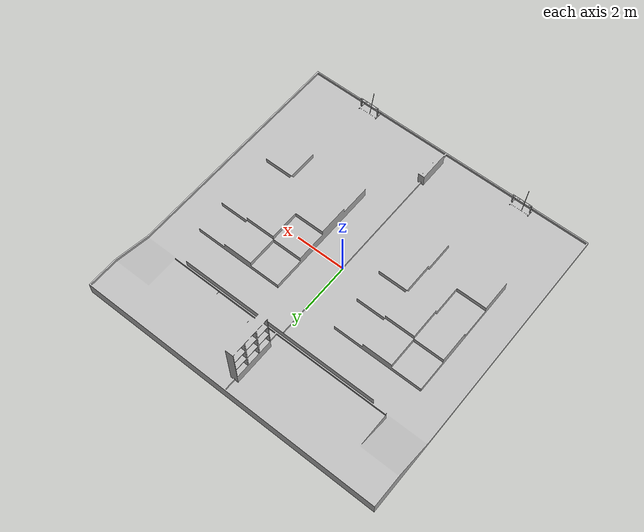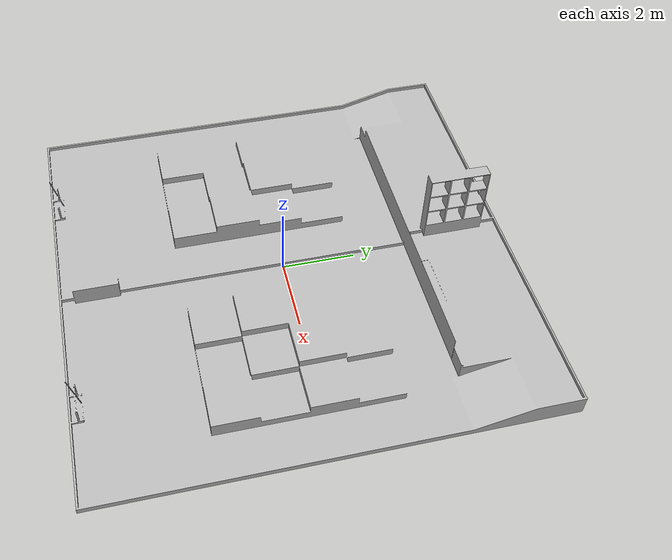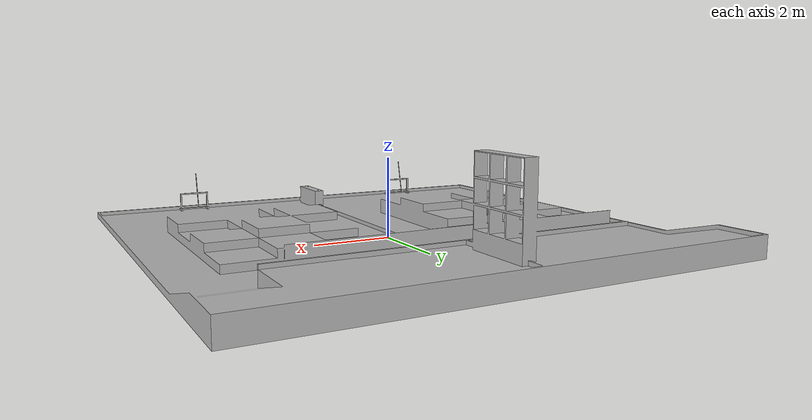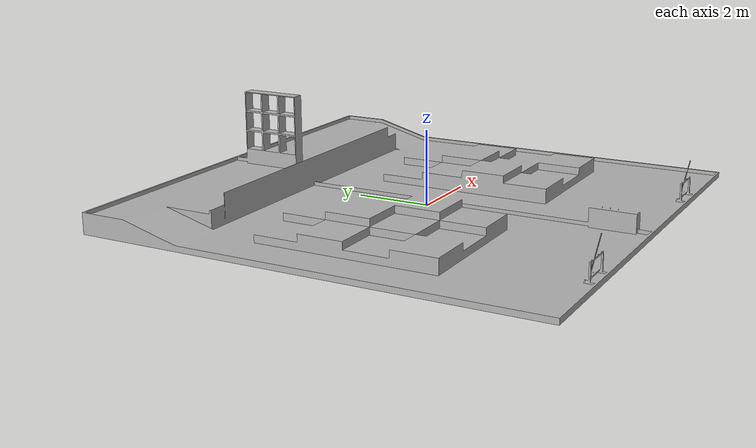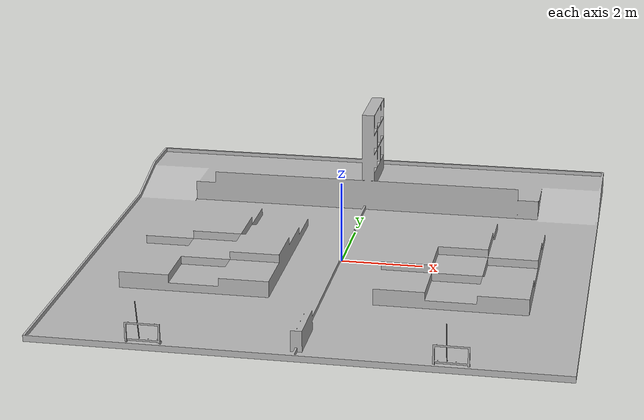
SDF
<?xml version="1.0"?>
<sdf version="1.9">
  <model name="arena">
    <static>true</static>

    <link name="arena_link">
      <visual name="arena_visual">
        <pose>0 0 0.05 0 0 0</pose>
        <geometry>
          <mesh>
            <uri>model://arena/meshes/arena_visual.obj</uri>
            <scale>1 1 1</scale>
          </mesh>
        </geometry>
      </visual>

      <!-- Optional but recommended -->
      <collision name="arena_collision">
        <geometry>
          <mesh>
            <uri>model://arena/meshes/arena_collision.stl</uri>
            <scale>1 1 1</scale>
          </mesh>
        </geometry>
        <pose>0 0 0.05 0 0 0</pose>
      </collision>
    </link>
  </model>
</sdf>
